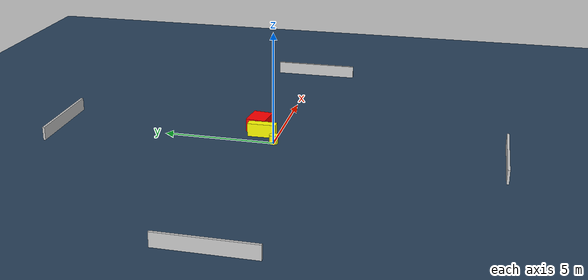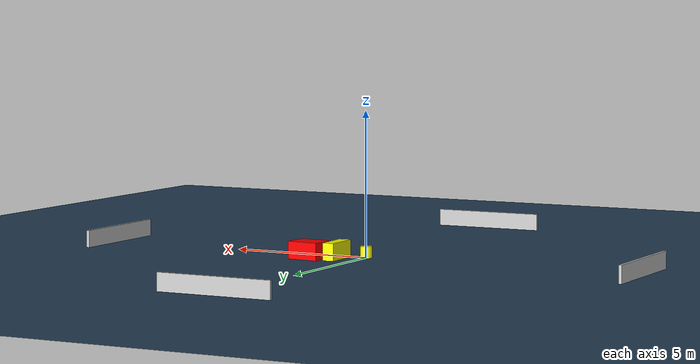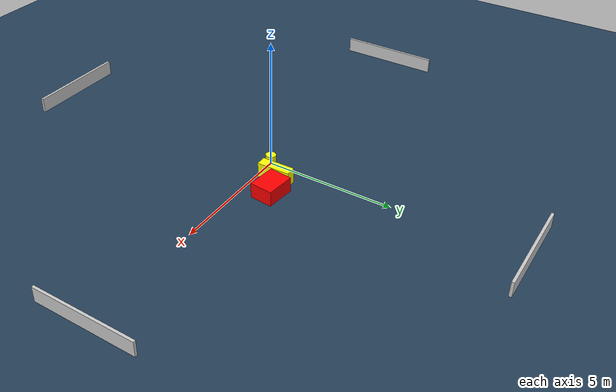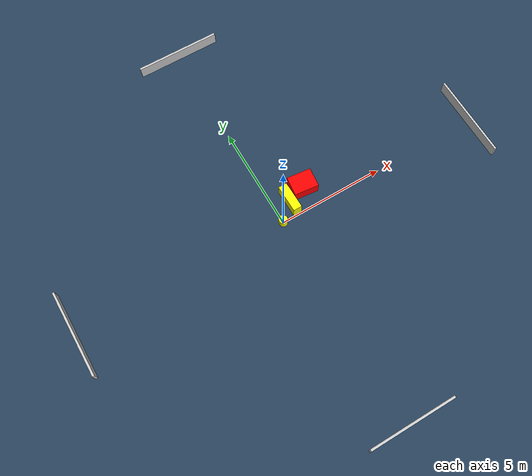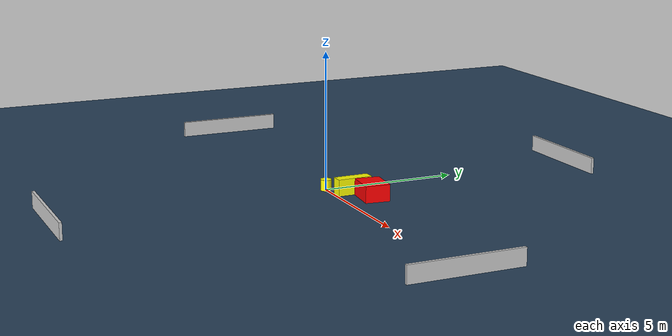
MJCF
<?xml version="1.0" ?>
<mujoco model="generated_environment">
  <option timestep="0.01" integrator="RK4" cone="elliptic"/>
  <default>
    <geom density="1"/>
  </default>
  <asset>
    <texture builtin="gradient" height="3072" name="skybox" rgb1="0.3 0.5 0.7" rgb2="0 0 0" type="skybox" width="512"/>
    <texture builtin="checker" height="300" name="groundplane" rgb1="0.2 0.3 0.4" rgb2="0.1 0.2 0.3" type="2d" width="300"/>
    <material name="groundplane" reflectance="0.2" texrepeat="5 5" texture="groundplane"/>
  </asset>
  <worldbody>
    <light dir="0 0 -1" directional="true" pos="0 0 1.5"/>
    <geom condim="3" friction="0.5 0.005 0.001" material="groundplane" name="floor" pos="0 0 0" size="0 0 0.05" type="plane"/>
    <body name="walls">
      <geom name="wall_1" condim="4" pos="-10.0 0.0 0.3" rgba="0.800000011920929 0.800000011920929 0.800000011920929 1.0" size="0.05 2.0 0.3" type="box"/>
      <geom name="wall_2" condim="4" pos="10.0 0.0 0.3" rgba="0.800000011920929 0.800000011920929 0.800000011920929 1.0" size="0.05 2.0 0.3" type="box"/>
      <geom name="wall_3" condim="4" pos="0.0 -10.0 0.3" rgba="0.800000011920929 0.800000011920929 0.800000011920929 1.0" size="2.0 0.05 0.3" type="box"/>
      <geom name="wall_4" condim="4" pos="0.0 10.0 0.3" rgba="0.800000011920929 0.800000011920929 0.800000011920929 1.0" size="2.0 0.05 0.3" type="box"/>
    </body>
    <body name="robot">
      <joint name="joint_x" type="slide" pos="0 0 0" axis="1 0 0"/>
      <joint name="joint_y" type="slide" pos="0 0 0" axis="0 1 0"/>
      <geom name="robot" type="cylinder" pos="0.0 0.0 0.2" size="0.2 0.2 0.0" mass="5.0" friction="1.0 0.005 0.0001" condim="4" rgba="1.0 1.0 0.0 1.0"/>
    </body>
    <body name="obstacle_1_movable">
      <geom name="obstacle_1_movable" condim="4" pos="0.7618990141183478 0.7019478909684619 0.3" euler="0 0 270.9511097045543" friction="0.0 0.005 0.001" rgba="1.0 1.0 0.0 1.0" size="0.6431136580913053 0.2032127873179415 0.3" type="box" mass="0.1"/>
      <joint type="free"/>
    </body>
    <body name="obstacle_2_static">
      <geom name="obstacle_2_static" condim="4" pos="1.6201836089326556 1.048189476425935 0.3" euler="0 0 173.97642333554276" friction="0.0 0.005 0.001" rgba="1.0 0.0 0.0 1.0" size="0.571335209252569 0.44903318052213237 0.3" type="box"/>
    </body>
  </worldbody>
  <actuator>
    <motor name="actuator_x" joint="joint_x" gear="1" ctrlrange="-1 1"/>
    <motor name="actuator_y" joint="joint_y" gear="1" ctrlrange="-1 1"/>
  </actuator>
</mujoco>
